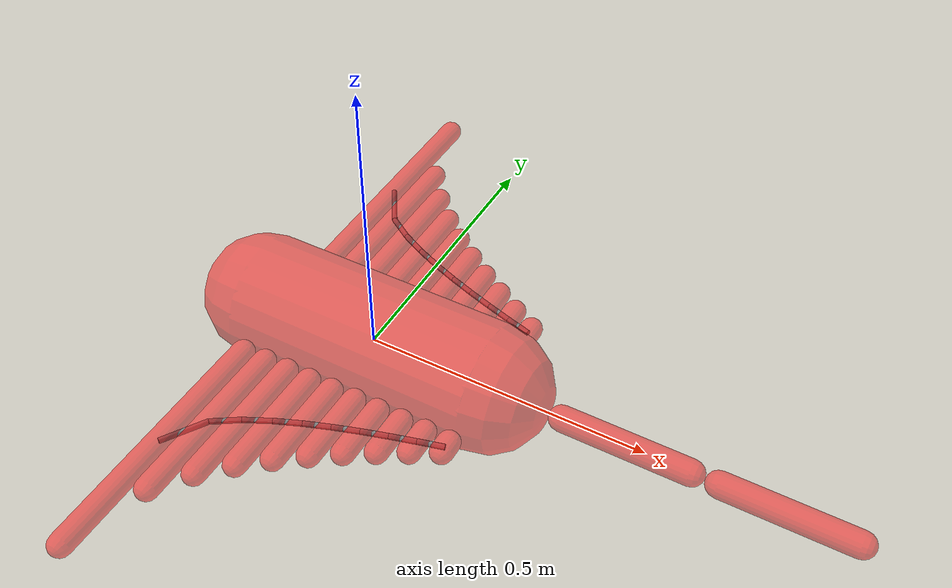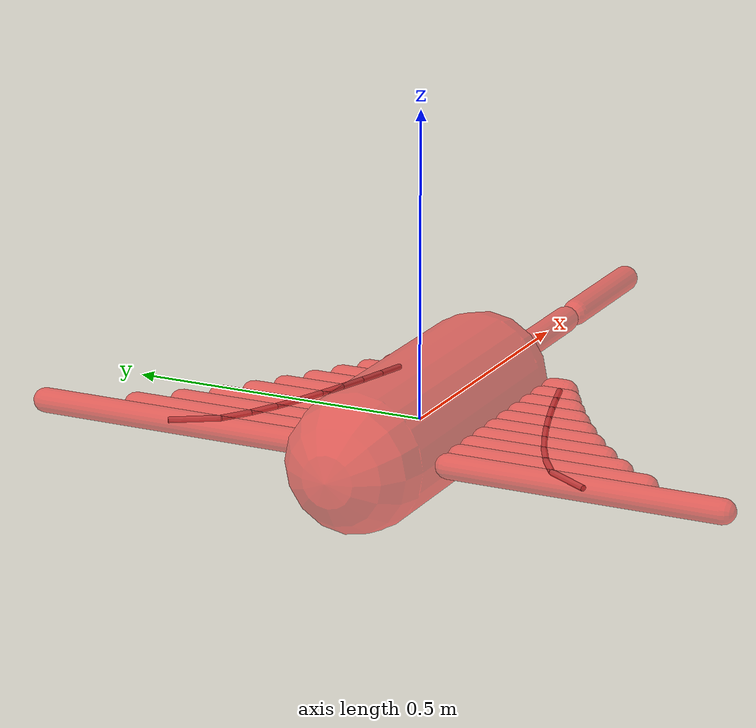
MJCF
<mujoco model="morphology">
  <compiler angle="radian"/>
  <default>
    <default class="/"/>
  </default>
  <worldbody>
    <body name="//unnamed_body_0">
      <body name="torso" pos="0 0 0" euler="0 0 0">
        <geom name="torso_body" class="/" type="capsule" size="0.11111111111111112 0.22222222222222224" rgba="100 0 0 0.5" friction="0.10000000000000001 0.10000000000000001 0.10000000000000001" density="1000" pos="0 0 0" euler="0 1.5707963267948966 0"/>
        <body name="right_pectoral_fin" pos="-0.22222222222222224 -0.11111111111111112 0" euler="0 0 0">
          <body name="right_pectoral_fin_segment_0" pos="0.044444444444444446 0 0" euler="0 0 0">
            <geom name="right_pectoral_fin_segment_0_capsule" class="/" type="capsule" size="0.02 0.22222222222222224" rgba="100 0 0 0.5" density="1000" pos="0 -0.24222222222222223 0" euler="1.5707963267948966 0 0"/>
            <joint name="right_pectoral_fin_segment_0_x_axis" class="/" type="hinge" axis="1 0 0" limited="true" stiffness="0.5" range="-1.5707963267948966 1.5707963267948966" damping="0.5"/>
            <joint name="right_pectoral_fin_segment_0_z_axis" class="/" type="hinge" axis="0 0 1" limited="true" stiffness="0.5" range="-0.078539816339744828 0.078539816339744828" damping="0.5"/>
            <site name="right_pectoral_fin_segment_0_tendon_site" class="/" type="sphere" size="0.0001 0.0001 0.0001" pos="0 -0.24222222222222223 0" euler="0 0 0"/>
          </body>
          <body name="right_pectoral_fin_segment_1" pos="0.088888888888888892 0 0" euler="0 0 0">
            <geom name="right_pectoral_fin_segment_1_capsule" class="/" type="capsule" size="0.02 0.15194938532959157" rgba="100 0 0 0.5" density="1000" pos="0 -0.17194938532959156 0" euler="1.5707963267948966 0 0"/>
            <joint name="right_pectoral_fin_segment_1_x_axis" class="/" type="hinge" axis="1 0 0" limited="true" stiffness="0.5" range="-1.5707963267948966 1.5707963267948966" damping="0.5"/>
            <joint name="right_pectoral_fin_segment_1_z_axis" class="/" type="hinge" axis="0 0 1" limited="true" stiffness="0.5" range="-0.078539816339744828 0.078539816339744828" damping="0.5"/>
            <site name="right_pectoral_fin_segment_1_tendon_site" class="/" type="sphere" size="0.0001 0.0001 0.0001" pos="0 -0.17194938532959156 0" euler="0 0 0"/>
          </body>
          <body name="right_pectoral_fin_segment_2" pos="0.13333333333333333 0 0" euler="0 0 0">
            <geom name="right_pectoral_fin_segment_2_capsule" class="/" type="capsule" size="0.02 0.12284142322223159" rgba="100 0 0 0.5" density="1000" pos="0 -0.14284142322223159 0" euler="1.5707963267948966 0 0"/>
            <joint name="right_pectoral_fin_segment_2_x_axis" class="/" type="hinge" axis="1 0 0" limited="true" stiffness="0.5" range="-1.5707963267948966 1.5707963267948966" damping="0.5"/>
            <joint name="right_pectoral_fin_segment_2_z_axis" class="/" type="hinge" axis="0 0 1" limited="true" stiffness="0.5" range="-0.078539816339744828 0.078539816339744828" damping="0.5"/>
            <site name="right_pectoral_fin_segment_2_tendon_site" class="/" type="sphere" size="0.0001 0.0001 0.0001" pos="0 -0.14284142322223159 0" euler="0 0 0"/>
          </body>
          <body name="right_pectoral_fin_segment_3" pos="0.17777777777777778 0 0" euler="0 0 0">
            <geom name="right_pectoral_fin_segment_3_capsule" class="/" type="capsule" size="0.02 0.10050609833218532" rgba="100 0 0 0.5" density="1000" pos="0 -0.12050609833218533 0" euler="1.5707963267948966 0 0"/>
            <joint name="right_pectoral_fin_segment_3_x_axis" class="/" type="hinge" axis="1 0 0" limited="true" stiffness="0.5" range="-1.5707963267948966 1.5707963267948966" damping="0.5"/>
            <joint name="right_pectoral_fin_segment_3_z_axis" class="/" type="hinge" axis="0 0 1" limited="true" stiffness="0.5" range="-0.078539816339744828 0.078539816339744828" damping="0.5"/>
            <site name="right_pectoral_fin_segment_3_tendon_site" class="/" type="sphere" size="0.0001 0.0001 0.0001" pos="0 -0.12050609833218533 0" euler="0 0 0"/>
          </body>
          <body name="right_pectoral_fin_segment_4" pos="0.22222222222222224 0 0" euler="0 0 0">
            <geom name="right_pectoral_fin_segment_4_capsule" class="/" type="capsule" size="0.02 0.081676548436960927" rgba="100 0 0 0.5" density="1000" pos="0 -0.10167654843696093 0" euler="1.5707963267948966 0 0"/>
            <joint name="right_pectoral_fin_segment_4_x_axis" class="/" type="hinge" axis="1 0 0" limited="true" stiffness="0.5" range="-1.5707963267948966 1.5707963267948966" damping="0.5"/>
            <joint name="right_pectoral_fin_segment_4_z_axis" class="/" type="hinge" axis="0 0 1" limited="true" stiffness="0.5" range="-0.078539816339744828 0.078539816339744828" damping="0.5"/>
            <site name="right_pectoral_fin_segment_4_tendon_site" class="/" type="sphere" size="0.0001 0.0001 0.0001" pos="0 -0.10167654843696093 0" euler="0 0 0"/>
          </body>
          <body name="right_pectoral_fin_segment_5" pos="0.26666666666666666 0 0" euler="0 0 0">
            <geom name="right_pectoral_fin_segment_5_capsule" class="/" type="capsule" size="0.02 0.065087381958544993" rgba="100 0 0 0.5" density="1000" pos="0 -0.085087381958544997 0" euler="1.5707963267948966 0 0"/>
            <joint name="right_pectoral_fin_segment_5_x_axis" class="/" type="hinge" axis="1 0 0" limited="true" stiffness="0.5" range="-1.5707963267948966 1.5707963267948966" damping="0.5"/>
            <joint name="right_pectoral_fin_segment_5_z_axis" class="/" type="hinge" axis="0 0 1" limited="true" stiffness="0.5" range="-0.078539816339744828 0.078539816339744828" damping="0.5"/>
            <site name="right_pectoral_fin_segment_5_tendon_site" class="/" type="sphere" size="0.0001 0.0001 0.0001" pos="0 -0.085087381958544997 0" euler="0 0 0"/>
          </body>
          <body name="right_pectoral_fin_segment_6" pos="0.31111111111111112 0 0" euler="0 0 0">
            <geom name="right_pectoral_fin_segment_6_capsule" class="/" type="capsule" size="0.02 0.050089629057448126" rgba="100 0 0 0.5" density="1000" pos="0 -0.07008962905744813 0" euler="1.5707963267948966 0 0"/>
            <joint name="right_pectoral_fin_segment_6_x_axis" class="/" type="hinge" axis="1 0 0" limited="true" stiffness="0.5" range="-1.5707963267948966 1.5707963267948966" damping="0.5"/>
            <joint name="right_pectoral_fin_segment_6_z_axis" class="/" type="hinge" axis="0 0 1" limited="true" stiffness="0.5" range="-0.078539816339744828 0.078539816339744828" damping="0.5"/>
            <site name="right_pectoral_fin_segment_6_tendon_site" class="/" type="sphere" size="0.0001 0.0001 0.0001" pos="0 -0.07008962905744813 0" euler="0 0 0"/>
          </body>
          <body name="right_pectoral_fin_segment_7" pos="0.35555555555555557 0 0" euler="0 0 0">
            <geom name="right_pectoral_fin_segment_7_capsule" class="/" type="capsule" size="0.02 0.036297771881316554" rgba="100 0 0 0.5" density="1000" pos="0 -0.056297771881316558 0" euler="1.5707963267948966 0 0"/>
            <joint name="right_pectoral_fin_segment_7_x_axis" class="/" type="hinge" axis="1 0 0" limited="true" stiffness="0.5" range="-1.5707963267948966 1.5707963267948966" damping="0.5"/>
            <joint name="right_pectoral_fin_segment_7_z_axis" class="/" type="hinge" axis="0 0 1" limited="true" stiffness="0.5" range="-0.078539816339744828 0.078539816339744828" damping="0.5"/>
            <site name="right_pectoral_fin_segment_7_tendon_site" class="/" type="sphere" size="0.0001 0.0001 0.0001" pos="0 -0.056297771881316558 0" euler="0 0 0"/>
          </body>
          <body name="right_pectoral_fin_segment_8" pos="0.40000000000000002 0 0" euler="0 0 0">
            <geom name="right_pectoral_fin_segment_8_capsule" class="/" type="capsule" size="0.02 0.023460624222240933" rgba="100 0 0 0.5" density="1000" pos="0 -0.043460624222240937 0" euler="1.5707963267948966 0 0"/>
            <joint name="right_pectoral_fin_segment_8_x_axis" class="/" type="hinge" axis="1 0 0" limited="true" stiffness="0.5" range="-1.5707963267948966 1.5707963267948966" damping="0.5"/>
            <joint name="right_pectoral_fin_segment_8_z_axis" class="/" type="hinge" axis="0 0 1" limited="true" stiffness="0.5" range="-0.078539816339744828 0.078539816339744828" damping="0.5"/>
            <site name="right_pectoral_fin_segment_8_tendon_site" class="/" type="sphere" size="0.0001 0.0001 0.0001" pos="0 -0.043460624222240937 0" euler="0 0 0"/>
          </body>
          <body name="right_pectoral_fin_segment_9" pos="0.44444444444444448 0 0" euler="0 0 0">
            <geom name="right_pectoral_fin_segment_9_capsule" class="/" type="capsule" size="0.02 0.011403711544330286" rgba="100 0 0 0.5" density="1000" pos="0 -0.03140371154433029 0" euler="1.5707963267948966 0 0"/>
            <joint name="right_pectoral_fin_segment_9_x_axis" class="/" type="hinge" axis="1 0 0" limited="true" stiffness="0.5" range="-1.5707963267948966 1.5707963267948966" damping="0.5"/>
            <joint name="right_pectoral_fin_segment_9_z_axis" class="/" type="hinge" axis="0 0 1" limited="true" stiffness="0.5" range="-0.078539816339744828 0.078539816339744828" damping="0.5"/>
            <site name="right_pectoral_fin_segment_9_tendon_site" class="/" type="sphere" size="0.0001 0.0001 0.0001" pos="0 -0.03140371154433029 0" euler="0 0 0"/>
          </body>
        </body>
        <body name="left_pectoral_fin" pos="-0.22222222222222224 0.11111111111111112 0" euler="0 0 0">
          <body name="left_pectoral_fin_segment_0" pos="0.044444444444444446 0 0" euler="0 0 0">
            <geom name="left_pectoral_fin_segment_0_capsule" class="/" type="capsule" size="0.02 0.22222222222222224" rgba="100 0 0 0.5" density="1000" pos="0 0.24222222222222223 0" euler="1.5707963267948966 0 0"/>
            <joint name="left_pectoral_fin_segment_0_x_axis" class="/" type="hinge" axis="1 0 0" limited="true" stiffness="0.5" range="-1.5707963267948966 1.5707963267948966" damping="0.5"/>
            <joint name="left_pectoral_fin_segment_0_z_axis" class="/" type="hinge" axis="0 0 1" limited="true" stiffness="0.5" range="-0.078539816339744828 0.078539816339744828" damping="0.5"/>
            <site name="left_pectoral_fin_segment_0_tendon_site" class="/" type="sphere" size="0.0001 0.0001 0.0001" pos="0 0.24222222222222223 0" euler="0 0 0"/>
          </body>
          <body name="left_pectoral_fin_segment_1" pos="0.088888888888888892 0 0" euler="0 0 0">
            <geom name="left_pectoral_fin_segment_1_capsule" class="/" type="capsule" size="0.02 0.15194938532959157" rgba="100 0 0 0.5" density="1000" pos="0 0.17194938532959156 0" euler="1.5707963267948966 0 0"/>
            <joint name="left_pectoral_fin_segment_1_x_axis" class="/" type="hinge" axis="1 0 0" limited="true" stiffness="0.5" range="-1.5707963267948966 1.5707963267948966" damping="0.5"/>
            <joint name="left_pectoral_fin_segment_1_z_axis" class="/" type="hinge" axis="0 0 1" limited="true" stiffness="0.5" range="-0.078539816339744828 0.078539816339744828" damping="0.5"/>
            <site name="left_pectoral_fin_segment_1_tendon_site" class="/" type="sphere" size="0.0001 0.0001 0.0001" pos="0 0.17194938532959156 0" euler="0 0 0"/>
          </body>
          <body name="left_pectoral_fin_segment_2" pos="0.13333333333333333 0 0" euler="0 0 0">
            <geom name="left_pectoral_fin_segment_2_capsule" class="/" type="capsule" size="0.02 0.12284142322223159" rgba="100 0 0 0.5" density="1000" pos="0 0.14284142322223159 0" euler="1.5707963267948966 0 0"/>
            <joint name="left_pectoral_fin_segment_2_x_axis" class="/" type="hinge" axis="1 0 0" limited="true" stiffness="0.5" range="-1.5707963267948966 1.5707963267948966" damping="0.5"/>
            <joint name="left_pectoral_fin_segment_2_z_axis" class="/" type="hinge" axis="0 0 1" limited="true" stiffness="0.5" range="-0.078539816339744828 0.078539816339744828" damping="0.5"/>
            <site name="left_pectoral_fin_segment_2_tendon_site" class="/" type="sphere" size="0.0001 0.0001 0.0001" pos="0 0.14284142322223159 0" euler="0 0 0"/>
          </body>
          <body name="left_pectoral_fin_segment_3" pos="0.17777777777777778 0 0" euler="0 0 0">
            <geom name="left_pectoral_fin_segment_3_capsule" class="/" type="capsule" size="0.02 0.10050609833218532" rgba="100 0 0 0.5" density="1000" pos="0 0.12050609833218533 0" euler="1.5707963267948966 0 0"/>
            <joint name="left_pectoral_fin_segment_3_x_axis" class="/" type="hinge" axis="1 0 0" limited="true" stiffness="0.5" range="-1.5707963267948966 1.5707963267948966" damping="0.5"/>
            <joint name="left_pectoral_fin_segment_3_z_axis" class="/" type="hinge" axis="0 0 1" limited="true" stiffness="0.5" range="-0.078539816339744828 0.078539816339744828" damping="0.5"/>
            <site name="left_pectoral_fin_segment_3_tendon_site" class="/" type="sphere" size="0.0001 0.0001 0.0001" pos="0 0.12050609833218533 0" euler="0 0 0"/>
          </body>
          <body name="left_pectoral_fin_segment_4" pos="0.22222222222222224 0 0" euler="0 0 0">
            <geom name="left_pectoral_fin_segment_4_capsule" class="/" type="capsule" size="0.02 0.081676548436960927" rgba="100 0 0 0.5" density="1000" pos="0 0.10167654843696093 0" euler="1.5707963267948966 0 0"/>
            <joint name="left_pectoral_fin_segment_4_x_axis" class="/" type="hinge" axis="1 0 0" limited="true" stiffness="0.5" range="-1.5707963267948966 1.5707963267948966" damping="0.5"/>
            <joint name="left_pectoral_fin_segment_4_z_axis" class="/" type="hinge" axis="0 0 1" limited="true" stiffness="0.5" range="-0.078539816339744828 0.078539816339744828" damping="0.5"/>
            <site name="left_pectoral_fin_segment_4_tendon_site" class="/" type="sphere" size="0.0001 0.0001 0.0001" pos="0 0.10167654843696093 0" euler="0 0 0"/>
          </body>
          <body name="left_pectoral_fin_segment_5" pos="0.26666666666666666 0 0" euler="0 0 0">
            <geom name="left_pectoral_fin_segment_5_capsule" class="/" type="capsule" size="0.02 0.065087381958544993" rgba="100 0 0 0.5" density="1000" pos="0 0.085087381958544997 0" euler="1.5707963267948966 0 0"/>
            <joint name="left_pectoral_fin_segment_5_x_axis" class="/" type="hinge" axis="1 0 0" limited="true" stiffness="0.5" range="-1.5707963267948966 1.5707963267948966" damping="0.5"/>
            <joint name="left_pectoral_fin_segment_5_z_axis" class="/" type="hinge" axis="0 0 1" limited="true" stiffness="0.5" range="-0.078539816339744828 0.078539816339744828" damping="0.5"/>
            <site name="left_pectoral_fin_segment_5_tendon_site" class="/" type="sphere" size="0.0001 0.0001 0.0001" pos="0 0.085087381958544997 0" euler="0 0 0"/>
          </body>
          <body name="left_pectoral_fin_segment_6" pos="0.31111111111111112 0 0" euler="0 0 0">
            <geom name="left_pectoral_fin_segment_6_capsule" class="/" type="capsule" size="0.02 0.050089629057448126" rgba="100 0 0 0.5" density="1000" pos="0 0.07008962905744813 0" euler="1.5707963267948966 0 0"/>
            <joint name="left_pectoral_fin_segment_6_x_axis" class="/" type="hinge" axis="1 0 0" limited="true" stiffness="0.5" range="-1.5707963267948966 1.5707963267948966" damping="0.5"/>
            <joint name="left_pectoral_fin_segment_6_z_axis" class="/" type="hinge" axis="0 0 1" limited="true" stiffness="0.5" range="-0.078539816339744828 0.078539816339744828" damping="0.5"/>
            <site name="left_pectoral_fin_segment_6_tendon_site" class="/" type="sphere" size="0.0001 0.0001 0.0001" pos="0 0.07008962905744813 0" euler="0 0 0"/>
          </body>
          <body name="left_pectoral_fin_segment_7" pos="0.35555555555555557 0 0" euler="0 0 0">
            <geom name="left_pectoral_fin_segment_7_capsule" class="/" type="capsule" size="0.02 0.036297771881316554" rgba="100 0 0 0.5" density="1000" pos="0 0.056297771881316558 0" euler="1.5707963267948966 0 0"/>
            <joint name="left_pectoral_fin_segment_7_x_axis" class="/" type="hinge" axis="1 0 0" limited="true" stiffness="0.5" range="-1.5707963267948966 1.5707963267948966" damping="0.5"/>
            <joint name="left_pectoral_fin_segment_7_z_axis" class="/" type="hinge" axis="0 0 1" limited="true" stiffness="0.5" range="-0.078539816339744828 0.078539816339744828" damping="0.5"/>
            <site name="left_pectoral_fin_segment_7_tendon_site" class="/" type="sphere" size="0.0001 0.0001 0.0001" pos="0 0.056297771881316558 0" euler="0 0 0"/>
          </body>
          <body name="left_pectoral_fin_segment_8" pos="0.40000000000000002 0 0" euler="0 0 0">
            <geom name="left_pectoral_fin_segment_8_capsule" class="/" type="capsule" size="0.02 0.023460624222240933" rgba="100 0 0 0.5" density="1000" pos="0 0.043460624222240937 0" euler="1.5707963267948966 0 0"/>
            <joint name="left_pectoral_fin_segment_8_x_axis" class="/" type="hinge" axis="1 0 0" limited="true" stiffness="0.5" range="-1.5707963267948966 1.5707963267948966" damping="0.5"/>
            <joint name="left_pectoral_fin_segment_8_z_axis" class="/" type="hinge" axis="0 0 1" limited="true" stiffness="0.5" range="-0.078539816339744828 0.078539816339744828" damping="0.5"/>
            <site name="left_pectoral_fin_segment_8_tendon_site" class="/" type="sphere" size="0.0001 0.0001 0.0001" pos="0 0.043460624222240937 0" euler="0 0 0"/>
          </body>
          <body name="left_pectoral_fin_segment_9" pos="0.44444444444444448 0 0" euler="0 0 0">
            <geom name="left_pectoral_fin_segment_9_capsule" class="/" type="capsule" size="0.02 0.011403711544330286" rgba="100 0 0 0.5" density="1000" pos="0 0.03140371154433029 0" euler="1.5707963267948966 0 0"/>
            <joint name="left_pectoral_fin_segment_9_x_axis" class="/" type="hinge" axis="1 0 0" limited="true" stiffness="0.5" range="-1.5707963267948966 1.5707963267948966" damping="0.5"/>
            <joint name="left_pectoral_fin_segment_9_z_axis" class="/" type="hinge" axis="0 0 1" limited="true" stiffness="0.5" range="-0.078539816339744828 0.078539816339744828" damping="0.5"/>
            <site name="left_pectoral_fin_segment_9_tendon_site" class="/" type="sphere" size="0.0001 0.0001 0.0001" pos="0 0.03140371154433029 0" euler="0 0 0"/>
          </body>
        </body>
      </body>
      <body name="tail" pos="0.33333333333333337 0 0" euler="0 0 0">
        <body name="tail_segment_0" pos="0 0 0" euler="0 0 0">
          <geom name="tail_segment_0_capsule" class="/" type="capsule" size="0.022222222222222223 0.11111111111111112" rgba="100 0 0 0.5" density="1000" pos="0.13333333333333333 0 0" euler="0 1.5707963267948966 0"/>
          <joint name="tail_segment_0_z_axis" class="/" type="hinge" axis="0 0 1" limited="true" stiffness="0.01" range="-0.78539816339744828 0.78539816339744828" damping="1"/>
          <joint name="tail_segment_0_y_axis" class="/" type="hinge" axis="0 1 0" limited="true" stiffness="0.01" range="-0.78539816339744828 0.78539816339744828" damping="1"/>
          <body name="tail_segment_1" pos="0.26666666666666666 0 0" euler="0 0 0">
            <geom name="tail_segment_1_capsule" class="/" type="capsule" size="0.022222222222222223 0.11111111111111112" rgba="100 0 0 0.5" density="1000" pos="0.13333333333333333 0 0" euler="0 1.5707963267948966 0"/>
            <joint name="tail_segment_1_z_axis" class="/" type="hinge" axis="0 0 1" limited="true" stiffness="0.01" range="-0.78539816339744828 0.78539816339744828" damping="1"/>
            <joint name="tail_segment_1_y_axis" class="/" type="hinge" axis="0 1 0" limited="true" stiffness="0.01" range="-0.78539816339744828 0.78539816339744828" damping="1"/>
          </body>
        </body>
      </body>
    </body>
  </worldbody>
  <tendon>
    <spatial name="right_pectoral_fin_tendon_right" class="/" limited="true" range="-20.871032557111299 21.292669578467084" width="0.0050000000000000001" stiffness="1000" damping="1">
      <site site="right_pectoral_fin_segment_0_tendon_site"/>
      <site site="right_pectoral_fin_segment_1_tendon_site"/>
      <site site="right_pectoral_fin_segment_2_tendon_site"/>
      <site site="right_pectoral_fin_segment_3_tendon_site"/>
      <site site="right_pectoral_fin_segment_4_tendon_site"/>
      <site site="right_pectoral_fin_segment_5_tendon_site"/>
      <site site="right_pectoral_fin_segment_6_tendon_site"/>
      <site site="right_pectoral_fin_segment_7_tendon_site"/>
      <site site="right_pectoral_fin_segment_8_tendon_site"/>
      <site site="right_pectoral_fin_segment_9_tendon_site"/>
    </spatial>
    <spatial name="left_pectoral_fin_tendon_left" class="/" limited="true" range="-20.871032557111299 21.292669578467084" width="0.0050000000000000001" stiffness="1000" damping="1">
      <site site="left_pectoral_fin_segment_0_tendon_site"/>
      <site site="left_pectoral_fin_segment_1_tendon_site"/>
      <site site="left_pectoral_fin_segment_2_tendon_site"/>
      <site site="left_pectoral_fin_segment_3_tendon_site"/>
      <site site="left_pectoral_fin_segment_4_tendon_site"/>
      <site site="left_pectoral_fin_segment_5_tendon_site"/>
      <site site="left_pectoral_fin_segment_6_tendon_site"/>
      <site site="left_pectoral_fin_segment_7_tendon_site"/>
      <site site="left_pectoral_fin_segment_8_tendon_site"/>
      <site site="left_pectoral_fin_segment_9_tendon_site"/>
    </spatial>
  </tendon>
  <actuator>
    <position name="tail_segment_0_z_axis_actuator" class="/" ctrllimited="true" ctrlrange="-0.78539816339744828 0.78539816339744828" joint="tail_segment_0_z_axis" kp="100"/>
    <position name="tail_segment_0_y_axis_actuator" class="/" ctrllimited="true" ctrlrange="-0.78539816339744828 0.78539816339744828" joint="tail_segment_0_y_axis" kp="100"/>
    <position name="tail_segment_1_z_axis_actuator" class="/" ctrllimited="true" ctrlrange="-0.78539816339744828 0.78539816339744828" joint="tail_segment_1_z_axis" kp="100"/>
    <position name="tail_segment_1_y_axis_actuator" class="/" ctrllimited="true" ctrlrange="-0.78539816339744828 0.78539816339744828" joint="tail_segment_1_y_axis" kp="100"/>
    <position name="right_pectoral_fin_actuator_x" class="/" ctrllimited="true" ctrlrange="-1.5707963267948966 1.5707963267948966" joint="right_pectoral_fin_segment_0_x_axis" kp="100"/>
    <position name="right_pectoral_fin_actuator_z" class="/" ctrllimited="true" ctrlrange="-1.5707963267948966 1.5707963267948966" joint="right_pectoral_fin_segment_0_z_axis" kp="100"/>
    <position name="left_pectoral_fin_actuator_x" class="/" ctrllimited="true" ctrlrange="-1.5707963267948966 1.5707963267948966" joint="left_pectoral_fin_segment_0_x_axis" kp="100"/>
    <position name="left_pectoral_fin_actuator_z" class="/" ctrllimited="true" ctrlrange="-1.5707963267948966 1.5707963267948966" joint="left_pectoral_fin_segment_0_z_axis" kp="100"/>
  </actuator>
  <sensor>
    <actuatorfrc name="right_pectoral_fin_force_sensor_x" actuator="right_pectoral_fin_actuator_x"/>
    <actuatorfrc name="right_pectoral_fin_force_sensor_z" actuator="right_pectoral_fin_actuator_z"/>
    <actuatorfrc name="left_pectoral_fin_force_sensor_x" actuator="left_pectoral_fin_actuator_x"/>
    <actuatorfrc name="left_pectoral_fin_force_sensor_z" actuator="left_pectoral_fin_actuator_z"/>
  </sensor>
</mujoco>
